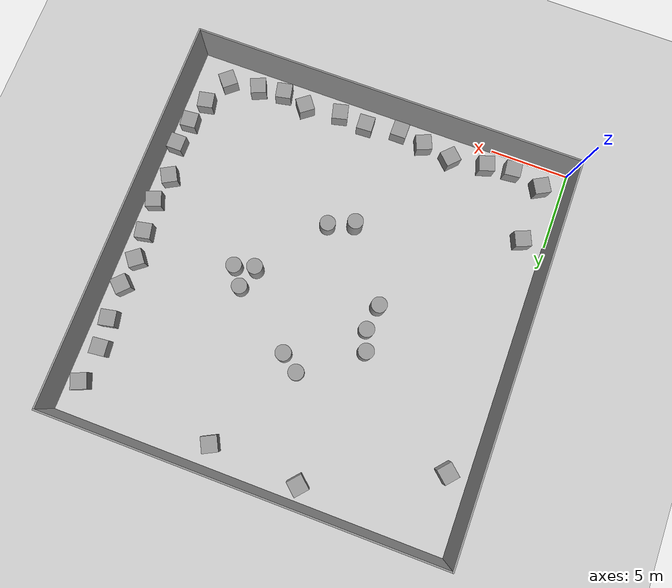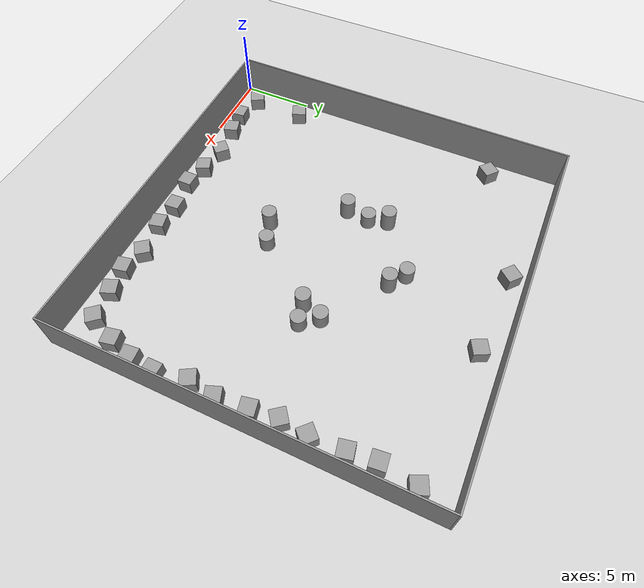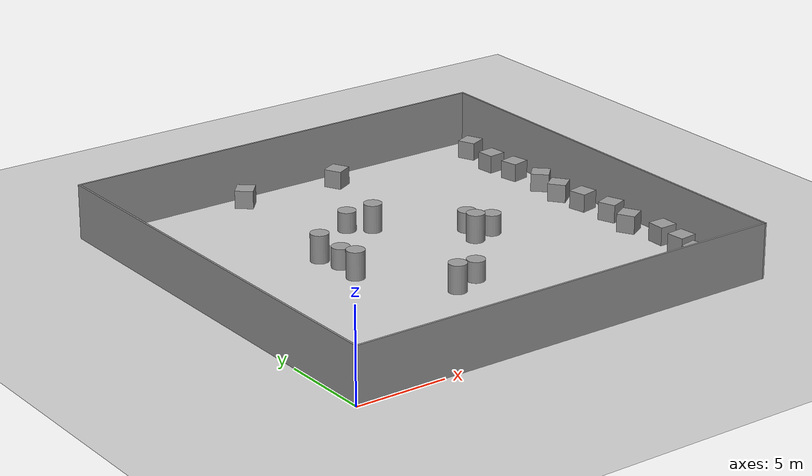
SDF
<?xml version='1.0' encoding='utf-8'?>
<sdf version="1.6">
    <world name="default">
        <scene>
            <grid>false</grid>
            <origin_visual>false</origin_visual>
        </scene>

        <!--Physics-->
        <gravity>0 0 -9.8</gravity>
        <magnetic_field>6e-06 2.3e-05 -4.2e-05</magnetic_field>
        <atmosphere type='adiabatic'/>
        <physics default="0" name="default_physics" type="ode">
            <max_step_size>0.004</max_step_size>
            <real_time_update_rate>250</real_time_update_rate>
            <solver>
                <iterations>20</iterations>
            </solver>
        </physics>

        <scene>
            <ambient>0.4 0.4 0.4 1</ambient>
            <background>0.7 0.7 0.7 1</background>
            <shadows>1</shadows>
        </scene>

        <!--Random Forest-->
        <model name="random_forest">
            <include>
                <uri>model://random_forest</uri>
            </include>
            <pose frame="">13.0 13.0 0 0 0 0</pose>
        </model>

        <!--Wall-->
        <model name="lower_wall">
            <pose frame="">12.45 0.05 1.5 0 0 0</pose>
            <static>1</static>
            <link name='left_wall_link'>
                <collision name='left_wall_collision'>
                    <geometry>
                        <box>
                            <size>24.9 0.1 3</size>
                        </box>
                    </geometry>
                </collision>
                <visual name='left_wall_visual'>
                    <geometry>
                        <box>
                            <size>24.9 0.1 3</size>
                        </box>
                    </geometry>
                    <material>
                        <script>
                            <uri>file://media/materials/scripts/gazebo.material</uri>
                            <name>Gazebo/Grey</name>
                        </script>
                        <ambient>1 1 1 1</ambient>
                    </material>
                    <meta>
                        <layer>0</layer>
                    </meta>
                </visual>
            </link>
        </model>

        <model name="right_wall">
            <pose frame="">24.95 12.45 1.5 0 0 1.5708</pose>
            <static>1</static>
            <link name='right_wall_link'>
                <collision name='right_wall_collision'>
                    <geometry>
                        <box>
                            <size>24.9 0.1 3</size>
                        </box>
                    </geometry>
                </collision>
                <visual name='right_wall_visual'>
                    <geometry>
                        <box>
                            <size>24.9 0.1 3</size>
                        </box>
                    </geometry>
                    <material>
                        <script>
                            <uri>file://media/materials/scripts/gazebo.material</uri>
                            <name>Gazebo/Grey</name>
                        </script>
                        <ambient>1 1 1 1</ambient>
                    </material>
                    <meta>
                        <layer>0</layer>
                    </meta>
                </visual>
            </link>
        </model>

        <model name="upper_wall">
            <pose frame="">12.55 24.95 1.5 0 0 0</pose>
            <static>1</static>
            <link name='upper_wall_link'>
                <collision name='upper_wall_collision'>
                    <geometry>
                        <box>
                            <size>24.9 0.1 3</size>
                        </box>
                    </geometry>
                </collision>
                <visual name='upper_wall_visual'>
                    <geometry>
                        <box>
                            <size>24.9 0.1 3</size>
                        </box>
                    </geometry>
                    <material>
                        <script>
                            <uri>file://media/materials/scripts/gazebo.material</uri>
                            <name>Gazebo/Grey</name>
                        </script>
                        <ambient>1 1 1 1</ambient>
                    </material>
                    <meta>
                        <layer>0</layer>
                    </meta>
                </visual>
            </link>
        </model>

        <model name="left_wall">
            <pose frame="">0.05 12.55 1.5 0 0 1.5708</pose>
            <static>1</static>
            <link name='left_wall_link'>
                <collision name='left_wall_collision'>
                    <geometry>
                        <box>
                            <size>24.9 0.1 3</size>
                        </box>
                    </geometry>
                </collision>
                <visual name='left_wall_visual'>
                    <geometry>
                        <box>
                            <size>24.9 0.1 3</size>
                        </box>
                    </geometry>
                    <material>
                        <script>
                            <uri>file://media/materials/scripts/gazebo.material</uri>
                            <name>Gazebo/Grey</name>
                        </script>
                        <ambient>1 1 1 1</ambient>
                    </material>
                    <meta>
                        <layer>0</layer>
                    </meta>
                </visual>
            </link>
        </model>

        <!--Random Box Figure-->
        <model name="box1">
            <include>
                <uri>model://unit_box</uri>
            </include>
            <pose frame="">1.5 1.5 0 0 0 0.5</pose>
        </model>

        <model name="box2">
            <include>
                <uri>model://unit_box</uri>
            </include>
            <pose frame="">3.5 1.05 0 0 0 0.1</pose>
        </model>

        <model name="box3">
            <include>
                <uri>model://unit_box</uri>
            </include>
            <pose frame="">5.2 1.3 0 0 0 0.3</pose>
        </model>

        <model name="box4">
            <include>
                <uri>model://unit_box</uri>
            </include>
            <pose frame="">7.5 1.65 0 0 0 0.8</pose>
        </model>

        <model name="box5">
            <include>
                <uri>model://unit_box</uri>
            </include>
            <pose frame="">9.4 1.35 0 0 0 0.4</pose>
        </model>

        <model name="box6">
            <include>
                <uri>model://unit_box</uri>
            </include>
            <pose frame="">11.1 1.05 0 0 0 0</pose>
        </model>

        <model name="box7">
            <include>
                <uri>model://unit_box</uri>
            </include>
            <pose frame="">13.3 1.4 0 0 0 0.05</pose>
        </model>

        <model name="box8">
            <include>
                <uri>model://unit_box</uri>
            </include>
            <pose frame="">15.1 1.25 0 0 0 0.24</pose>
        </model>

        <model name="box9">
            <include>
                <uri>model://unit_box</uri>
            </include>
            <pose frame="">17.4 1.55 0 0 0 0.65</pose>
        </model>

        <model name="box10">
            <include>
                <uri>model://unit_box</uri>
            </include>
            <pose frame="">19.0 1.15 0 0 0 0.2</pose>
        </model>

        <model name="box11">
            <include>
                <uri>model://unit_box</uri>
            </include>
            <pose frame="">20.7 1.4 0 0 0 0.4</pose>
        </model>

        <model name="box12">
            <include>
                <uri>model://unit_box</uri>
            </include>
            <pose frame="">22.7 1.65 0 0 0 0.7</pose>
        </model>

        <model name="box13">
            <include>
                <uri>model://unit_box</uri>
            </include>
            <pose frame="">23.5 3.5 0 0 0 0.2</pose>
        </model>

        <model name="box14">
            <include>
                <uri>model://unit_box</uri>
            </include>
            <pose frame="">24.0 5.1 0 0 0 0.1</pose>
        </model>

        <model name="box15">
            <include>
                <uri>model://unit_box</uri>
            </include>
            <pose frame="">24.2 6.8 0 0 0 0.0</pose>
        </model>

        <model name="box16">
            <include>
                <uri>model://unit_box</uri>
            </include>
            <pose frame="">23.8 9.0 0 0 0 0.5</pose>
        </model>

        <model name="box17">
            <include>
                <uri>model://unit_box</uri>
            </include>
            <pose frame="">24.1 10.8 0 0 0 0.35</pose>
        </model>

        <model name="box18">
            <include>
                <uri>model://unit_box</uri>
            </include>
            <pose frame="">23.9 12.9 0 0 0 0.2</pose>
        </model>

        <model name="box19">
            <include>
                <uri>model://unit_box</uri>
            </include>
            <pose frame="">23.7 14.7 0 0 0 0.65</pose>
        </model>

        <model name="box20">
            <include>
                <uri>model://unit_box</uri>
            </include>
            <pose frame="">23.9 16.5 0 0 0 0.8</pose>
        </model>

        <model name="box21">
            <include>
                <uri>model://unit_box</uri>
            </include>
            <pose frame="">23.8 18.7 0 0 0 0.2</pose>
        </model>

        <model name="box22">
            <include>
                <uri>model://unit_box</uri>
            </include>
            <pose frame="">23.6 20.5 0 0 0 0.1</pose>
        </model>

        <model name="box23">
            <include>
                <uri>model://unit_box</uri>
            </include>
            <pose frame="">23.9 22.8 0 0 0 0.4</pose>
        </model>

        <model name="box24">
            <include>
                <uri>model://unit_box</uri>
            </include>
            <pose frame="">9.5 23.9 0 0 0 0.85</pose>
        </model>

        <model name="box25">
            <include>
                <uri>model://unit_box</uri>
            </include>
            <pose frame="">15.2 23.5 0 0 0 0.47</pose>
        </model>

        <model name="box26">
            <include>
                <uri>model://unit_box</uri>
            </include>
            <pose frame="">1.5 20.2 0 0 0 0.85</pose>
        </model>

        <model name="box27">
            <include>
                <uri>model://unit_box</uri>
            </include>
            <pose frame="">1.6 5.2 0 0 0 0.4</pose>
        </model>

        <!--World-->
        <model name='ground_plane'>
            <pose frame="">12.5 12.5 0 0 0 0</pose>
            <static>1</static>
            <link name='link'>
                <collision name='collision'>
                    <geometry>
                        <plane>
                            <normal>0 0 1</normal>
                            <size>25 25</size>
                        </plane>
                    </geometry>
                    <surface>
                        <friction>
                            <ode>
                                <mu>100</mu>
                                <mu2>50</mu2>
                            </ode>
                            <torsional>
                                <ode/>
                            </torsional>
                        </friction>
                        <contact>
                            <ode/>
                        </contact>
                        <bounce/>
                    </surface>
                    <max_contacts>10</max_contacts>
                </collision>
                <visual name='visual'>
                    <cast_shadows>0</cast_shadows>
                    <geometry>
                        <plane>
                            <normal>0 0 1</normal>
                            <size>25 25</size>
                        </plane>
                    </geometry>
                    <material>
                        <script>
                            <uri>file://media/materials/scripts/gazebo.material</uri>
                            <name>Gazebo/Grey</name>
                        </script>
                    </material>
                </visual>
                <self_collide>0</self_collide>
                <enable_wind>0</enable_wind>
                <kinematic>0</kinematic>
            </link>
        </model>

        <light name='sun' type='directional'>
            <cast_shadows>1</cast_shadows>
            <pose>15 15 100 0 -0 0</pose>
            <diffuse>0.8 0.8 0.8 1</diffuse>
            <specular>0.2 0.2 0.2 1</specular>
            <attenuation>
                <range>1000</range>
                <constant>0.9</constant>
                <linear>0.01</linear>
                <quadratic>0.001</quadratic>
            </attenuation>
            <direction>-0.5 0.1 -0.9</direction>
            <spot>
                <inner_angle>0</inner_angle>
                <outer_angle>0</outer_angle>
                <falloff>0</falloff>
            </spot>
        </light>

        <!--Screen-->
        <gui fullscreen='0'>
            <camera name='user_camera'>
                <pose>-12.0162 -10.8508 10.8135 -0 0.583643 0.804195</pose>
                <view_controller>orbit</view_controller>
                <projection_type>perspective</projection_type>
            </camera>
        </gui>

    </world>
</sdf>

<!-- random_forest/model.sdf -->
<sdf version='1.7'>
    <model name="random_forest">
        <pose>0 0 0 0 0 0</pose>

        <include>
            <uri>model://tree_type_tall</uri>
            <name>upper_left_1</name>
            <pose frame="">-4.6 2.2 0 0 0 0</pose>
        </include>

        <include>
            <uri>model://tree_type_short</uri>
            <name>upper_left_2</name>
            <pose frame="">-4.2 0.9 0 0 0 0</pose>
        </include>

        <include>
            <uri>model://tree_type_tall</uri>
            <name>upper_left_3</name>
            <pose frame="">-4.4 -0.7 0 0 0 0</pose>
        </include>

        <include>
            <uri>model://tree_type_tall</uri>
            <name>lower_middle_1</name>
            <pose frame="">-1.3 -5.1 0 0 0 0</pose>
        </include>

        <include>
            <uri>model://tree_type_short</uri>
            <name>lower_middle_2</name>
            <pose frame="">0.3 -4.5 0 0 0 0</pose>
        </include>

        <include>
            <uri>model://tree_type_short</uri>
            <name>middle_right_1</name>
            <pose frame="">4.0 1.1 0 0 0 0</pose>
        </include>

        <include>
            <uri>model://tree_type_tall</uri>
            <name>middle_right_2</name>
            <pose frame="">3.5 -0.3 0 0 0 0</pose>
        </include>

        <include>
            <uri>model://tree_type_short</uri>
            <name>middle_right_3</name>
            <pose frame="">4.8 0 0 0 0 0</pose>
        </include>

        <include>
            <uri>model://tree_type_short</uri>
            <name>upper_middle_1</name>
            <pose frame="">-1.1 4.8 0 0 0 0</pose>
        </include>

        <include>
            <uri>model://tree_type_tall</uri>
            <name>upper_middle_2</name>
            <pose frame="">0 4.0 0 0 0 0</pose>
        </include>

    </model>
</sdf>

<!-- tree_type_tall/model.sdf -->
<sdf version='1.7'>
    <model name='tree_type_tall'>
        <pose>0 0 0.5 0 -0 0</pose>
        <link name='link'>
            <inertial>
                <mass>1</mass>
                <inertia>
                    <ixx>0.8125</ixx>
                    <ixy>0</ixy>
                    <ixz>0</ixz>
                    <iyy>0.8125</iyy>
                    <iyz>0</iyz>
                    <izz>0.125</izz>
                </inertia>
                <pose>0 0 0 0 -0 0</pose>
            </inertial>
            <collision name='collision'>
                <geometry>
                    <cylinder>
                        <radius>0.5</radius>
                        <length>3</length>
                    </cylinder>
                </geometry>
                <max_contacts>10</max_contacts>
            </collision>
            <visual name='visual'>
                <geometry>
                    <cylinder>
                        <radius>0.5</radius>
                        <length>3</length>
                    </cylinder>
                </geometry>
                <material>
                    <script>
                        <name>Gazebo/Grey</name>
                        <uri>file://media/materials/scripts/gazebo.material</uri>
                    </script>
                </material>
            </visual>
            <self_collide>0</self_collide>
            <enable_wind>0</enable_wind>
            <kinematic>0</kinematic>
        </link>
    </model>
</sdf>

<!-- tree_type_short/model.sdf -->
<sdf version='1.7'>
    <model name='tree_type_short'>
        <pose>0 0 0.5 0 -0 0</pose>
        <link name='link'>
            <inertial>
                <mass>1</mass>
                <inertia>
                    <ixx>0.465833</ixx>
                    <ixy>0</ixy>
                    <ixz>0</ixz>
                    <iyy>0.465833</iyy>
                    <iyz>0</iyz>
                    <izz>0.125</izz>
                </inertia>
                <pose>0 0 0 0 -0 0</pose>
            </inertial>
            <collision name='collision'>
                <geometry>
                    <cylinder>
                        <radius>0.5</radius>
                        <length>2.2</length>
                    </cylinder>
                </geometry>
                <max_contacts>10</max_contacts>
            </collision>
            <visual name='visual'>
                <geometry>
                    <cylinder>
                        <radius>0.5</radius>
                        <length>2.2</length>
                    </cylinder>
                </geometry>
                <material>
                    <script>
                        <name>Gazebo/Grey</name>
                        <uri>file://media/materials/scripts/gazebo.material</uri>
                    </script>
                </material>
            </visual>
            <self_collide>0</self_collide>
            <enable_wind>0</enable_wind>
            <kinematic>0</kinematic>
        </link>
    </model>
</sdf>

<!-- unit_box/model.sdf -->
<sdf version='1.7'>
    <model name='unit_box'>
        <pose>0 0 0.5 0 -0 0</pose>
        <link name='link'>
            <inertial>
                <mass>1</mass>
                <inertia>
                    <ixx>0.166667</ixx>
                    <ixy>0</ixy>
                    <ixz>0</ixz>
                    <iyy>0.166667</iyy>
                    <iyz>0</iyz>
                    <izz>0.166667</izz>
                </inertia>
                <pose>0 0 0 0 0 0</pose>
            </inertial>
            <collision name='collision'>
                <geometry>
                    <box>
                        <size>1 1 1</size>
                    </box>
                </geometry>
                <max_contacts>10</max_contacts>
            </collision>
            <visual name='visual'>
                <geometry>
                    <box>
                        <size>1 1 1</size>
                    </box>
                </geometry>
                <material>
                    <script>
                        <name>Gazebo/Grey</name>
                        <uri>file://media/materials/scripts/gazebo.material</uri>
                    </script>
                </material>
            </visual>
            <self_collide>0</self_collide>
            <enable_wind>0</enable_wind>
            <kinematic>0</kinematic>
        </link>
    </model>
</sdf>
